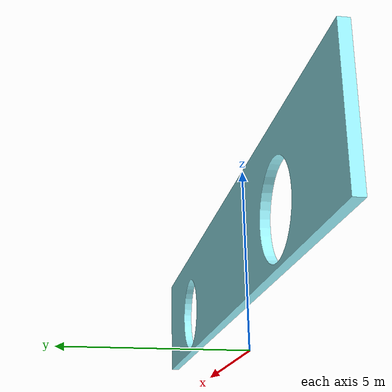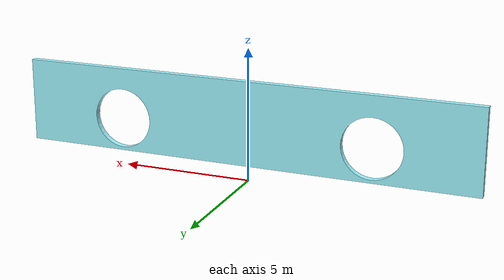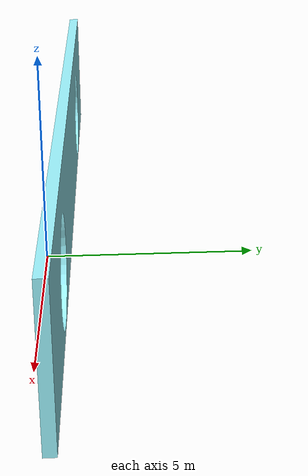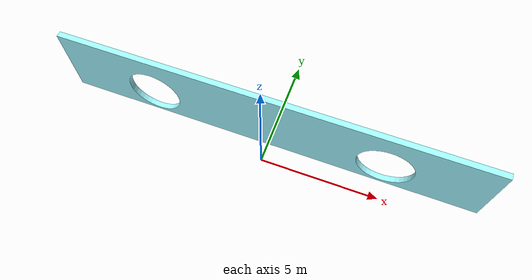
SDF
<?xml version='1.0'?>
<sdf version='1.6'>
  <model name='package_1'>
    <link name='link_0'>
      <pose frame=''>0 0 0 0 -0 0</pose>
      <self_collide>0</self_collide>
      <enable_wind>0</enable_wind>
      <kinematic>0</kinematic>
      <gravity>1</gravity>
      <inertial>
        <mass>1</mass>
        <pose frame=''>0 0 0 0 -0 0</pose>
        <inertia>
          <ixx>1</ixx>
          <ixy>0</ixy>
          <ixz>0</ixz>
          <iyy>1</iyy>
          <iyz>0</iyz>
          <izz>1</izz>
        </inertia>
      </inertial>
      <visual name='visual'>
        <pose frame=''>0 0 0 0 -0 0</pose>
        <geometry>
          <mesh>
            <uri>model://package_1/meshes/package.dae</uri>
            <scale>8 8 8</scale>
          </mesh>
        </geometry>
        <transparency>0</transparency>
        <cast_shadows>False</cast_shadows>
      </visual>
      <collision name="collision">
        <geometry>
          <mesh>
            <uri>model://package_1/meshes/package.dae</uri>
            <scale>8 8 8</scale>
          </mesh>
        </geometry>
      </collision>
    </link>
    <static>1</static>
    <allow_auto_disable>1</allow_auto_disable>
  </model>

</sdf>
